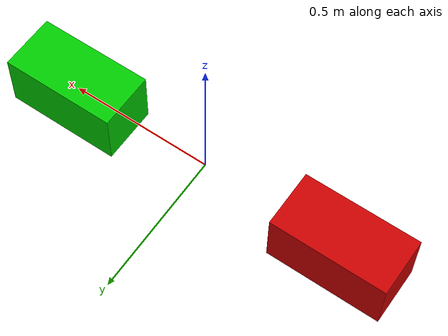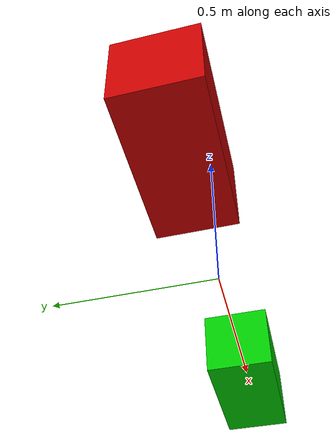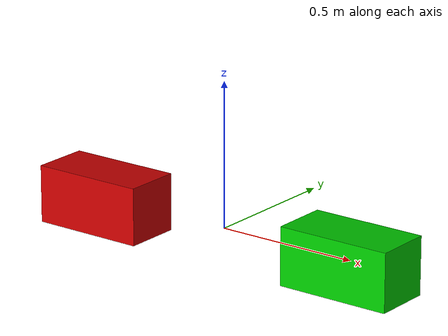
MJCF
<mujoco>
    <!-- gravity -->
    <option gravity="0 0 0" />
    <!-- main_body -->
    <worldbody>
        <!-- light source -->
        <light diffuse="0.5 0.5 0.5" pos="1.5 0 2" dir="0 0 -1" />
        <!-- body_1 -->
        <body name="body_1" pos="-0.5 0 0">
			<joint type="free"/>
            <geom type="box" pos="0 0 0" size="0.20 0.10 0.10" rgba="0.8 0 0 1" />
        </body>
        <!-- body_2 -->
        <body name="body_2" pos="0.5 0 0">
			<joint type="free"/>
            <geom type="box" pos="0 0 0" size="0.20 0.10 0.10" rgba="0 0.8 0 1" />
        </body>
    </worldbody>
</mujoco>
